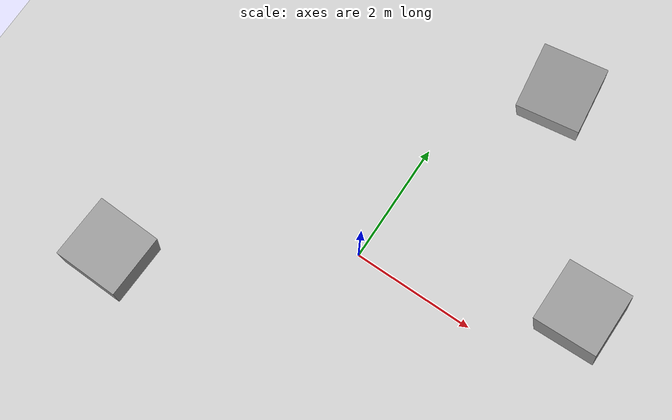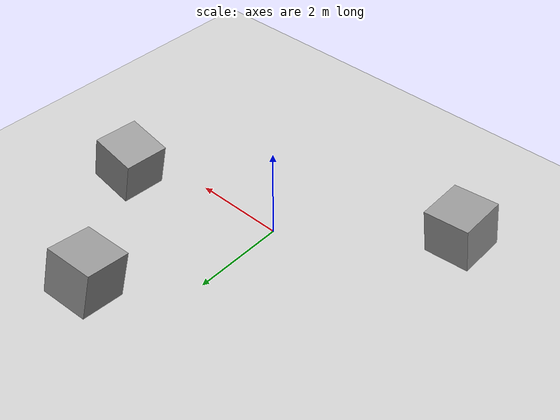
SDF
<sdf version="1.6">
 <world name="default">
  <physics name="default_physics" default="0" type="ode">
   <ode>
    <solver>
     <type>quick</type>
     <iters>20</iters>
     <sor>1</sor>
     <use_dynamic_moi_rescaling>0</use_dynamic_moi_rescaling>
    </solver>
    <constraints>
     <cfm>0</cfm>
     <erp>0.2</erp>
     <contact_max_correcting_vel>100</contact_max_correcting_vel>
     <contact_surface_layer>0</contact_surface_layer>
    </constraints>
   </ode>
   <max_step_size>0.001</max_step_size>
   <real_time_factor>1</real_time_factor>
   <real_time_update_rate>1000</real_time_update_rate>
  </physics>
  <light name="sun" type="directional">
   <pose>0 0 10 0 -0 0</pose>
   <diffuse>0.8 0.8 0.8 1</diffuse>
   <specular>0.2 0.2 0.2 1</specular>
   <attenuation>
    <range>1000</range>
    <constant>0.9</constant>
    <linear>0.01</linear>
    <quadratic>0.001</quadratic>
   </attenuation>
   <direction>-0.5 0.1 -0.9</direction>
  </light>
  <model name="ground_plane">
   <static>1</static>
   <link name="link">
    <collision name="collision">
     <geometry><plane><normal>0 0 1</normal><size>100 100</size></plane></geometry>
     <surface>
      <contact><collide_bitmask>65535</collide_bitmask></contact>
      <friction><ode><mu>100</mu><mu2>50</mu2></ode></friction>
     </surface>
    </collision>
    <visual name="visual">
     <cast_shadows>0</cast_shadows>
     <geometry><plane><normal>0 0 1</normal><size>100 100</size></plane></geometry>
     <material>
      <script><uri>file://media/materials/scripts/gazebo.material</uri><name>Gazebo/Grey</name></script>
     </material>
    </visual>
   </link>
  </model>
  <gravity>0 0 -9.8</gravity>
  <magnetic_field>6e-06 2.3e-05 -4.2e-05</magnetic_field>
  <atmosphere type="adiabatic"/>
  <scene><ambient>0.4 0.4 0.4 1</ambient><background>0.7 0.7 0.7 1</background><shadows>1</shadows></scene>
  <audio><device>default</device></audio>
  <spherical_coordinates>
   <surface_model>EARTH_WGS84</surface_model>
   <latitude_deg>0</latitude_deg>
   <longitude_deg>0</longitude_deg>
   <elevation>0</elevation>
   <heading_deg>0</heading_deg>
  </spherical_coordinates>
  <model name="unit_box">
   <pose>1.22738 3.66639 0.792244 0.235013 -0.102693 0.110003</pose>
   <link name="link">
    <inertial>
     <mass>1</mass>
     <inertia>
      <ixx>0.166667</ixx>
      <ixy>0</ixy>
      <ixz>0</ixz>
      <iyy>0.166667</iyy>
      <iyz>0</iyz>
      <izz>0.166667</izz>
     </inertia>
    </inertial>
    <collision name="collision"><geometry><box><size>1 1 1</size></box></geometry></collision>
    <visual name="visual">
     <geometry><box><size>1 1 1</size></box></geometry>
     <material>
      <script><name>Gazebo/Grey</name><uri>file://media/materials/scripts/gazebo.material</uri></script>
     </material>
    </visual>
   </link>
  </model>
  <model name="unit_box_0">
   <pose>3.20578 0.996413 0.684589 0.053415 -0.204874 -0.012045</pose>
   <link name="link">
    <inertial>
     <mass>1</mass>
     <inertia>
      <ixx>0.166667</ixx>
      <ixy>0</ixy>
      <ixz>0</ixz>
      <iyy>0.166667</iyy>
      <iyz>0</iyz>
      <izz>0.166667</izz>
     </inertia>
    </inertial>
    <collision name="collision"><geometry><box><size>1 1 1</size></box></geometry></collision>
    <visual name="visual">
     <geometry><box><size>1 1 1</size></box></geometry>
     <material>
      <script><name>Gazebo/Grey</name><uri>file://media/materials/scripts/gazebo.material</uri></script>
     </material>
    </visual>
   </link>
  </model>
  <model name="unit_box_1">
   <pose>-3.04139 -2.08078 0.625837 -0.071315 0.119938 -0.034948</pose>
   <link name="link">
    <inertial>
     <mass>1</mass>
     <inertia>
      <ixx>0.166667</ixx>
      <ixy>0</ixy>
      <ixz>0</ixz>
      <iyy>0.166667</iyy>
      <iyz>0</iyz>
      <izz>0.166667</izz>
     </inertia>
    </inertial>
    <collision name="collision"><geometry><box><size>1 1 1</size></box></geometry></collision>
    <visual name="visual">
     <geometry><box><size>1 1 1</size></box></geometry>
     <material>
      <script><name>Gazebo/Grey</name><uri>file://media/materials/scripts/gazebo.material</uri></script>
     </material>
    </visual>
   </link>
  </model>
  <model name="unit_box_1">
   <pose>-3.04139 -2.08078 0.625837 -0.071315 0.119938 -0.034948</pose>
   <link name="link">
    <inertial>
     <mass>1</mass>
     <inertia>
      <ixx>0.166667</ixx>
      <ixy>0</ixy>
      <ixz>0</ixz>
      <iyy>0.166667</iyy>
      <iyz>0</iyz>
      <izz>0.166667</izz>
     </inertia>
    </inertial>
    <collision name="collision"><geometry><box><size>1 1 1</size></box></geometry></collision>
    <visual name="visual">
     <geometry><box><size>1 1 1</size></box></geometry>
     <material>
      <script><name>Gazebo/Grey</name><uri>file://media/materials/scripts/gazebo.material</uri></script>
     </material>
    </visual>
   </link>
  </model>
 </world>
</sdf>
